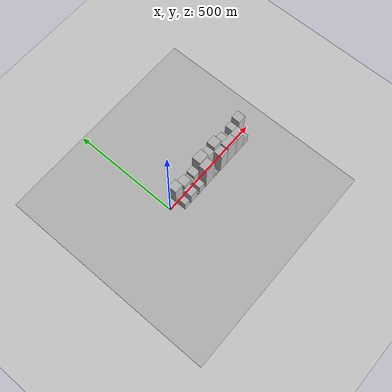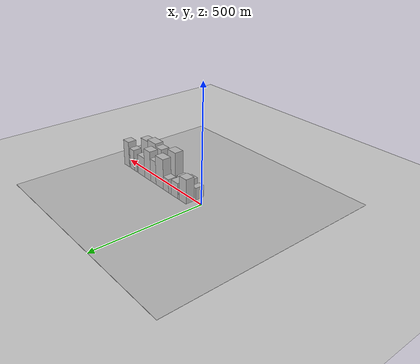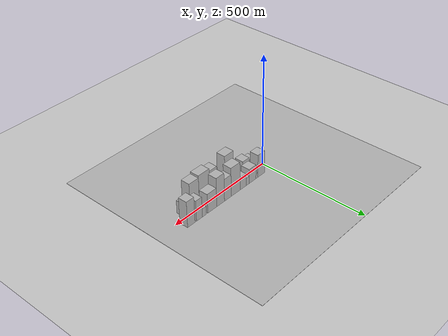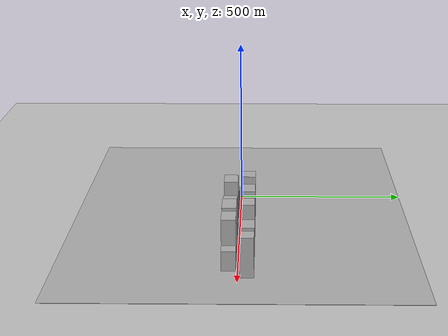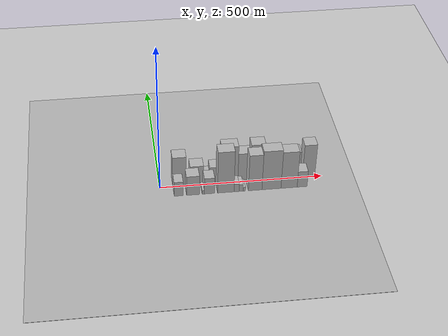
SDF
<?xml version="1.0" encoding="utf-8"?>

<sdf version="1.6">

   <world name="default">

      <gui fullscreen="0">

         <camera name="user_camera">

            <pose>-15 0 4.57585 0 0 0</pose>

            <view_controller>orbit</view_controller>

         </camera>

      </gui>

      <scene>

         <sky>

           <clouds>

             <speed>12</speed>

           </clouds>

         </sky>

         <ambient>0.4 0.4 0.4 1</ambient>

         <background>0.7 0.7 0.7 1</background>

         <shadows>1</shadows>

      </scene>

      <gravity>0 0 -9.8066</gravity>

      <magnetic_field>6e-06 2.3e-05 -4.2e-05</magnetic_field>

      <physics default="0" name="default_physics" type="ode">

         <ode>

            <solver>

               <type>quick</type>

               <iters>10</iters>

               <sor>1.0</sor>

               <use_dynamic_moi_rescaling>0</use_dynamic_moi_rescaling>

            </solver>

            <constraints>

               <cfm>0</cfm>

               <erp>0.2</erp>

               <contact_max_correcting_vel>100</contact_max_correcting_vel>

               <contact_surface_layer>0.001</contact_surface_layer>

            </constraints>

         </ode>

         <max_step_size>0.004</max_step_size>

         <real_time_factor>1</real_time_factor>

         <real_time_update_rate>250</real_time_update_rate>

      </physics>

      <light name="sun" type="directional">

         <cast_shadows>1</cast_shadows>

         <pose>0 0 10 0 0 0</pose>

         <diffuse>0.8 0.8 0.8 1</diffuse>

         <specular>0.2 0.2 0.2 1</specular>

         <attenuation>

            <range>1000</range>

            <constant>0.9</constant>

            <linear>0.01</linear>

            <quadratic>0.001</quadratic>

         </attenuation>

         <direction>-0.5 0.1 -0.9</direction>

      </light>

      <include>

         <name>ground_plane_1</name>

         <uri>model://HANNAS_ground_plane</uri>

         <pose>0 0 0  0 0 0</pose>

      </include>

      <include>

         <name>ground_plane_2</name>

         <uri>model://HANNAS_ground_plane</uri>

         <pose>100 0 0  0 0 0</pose>

      </include>

      <model name="building_1">

         <static>1</static>

         <pose frame="">61.0393 24.5000 0 0.000000 0.000000 1.570796</pose>

         <link name="link">

            <pose frame="">0 0 54.00 0 0 0</pose>

            <collision name="collision">

               <geometry>

                  <box>

                     <size>40.0000 42.0786 108.0000</size>

                  </box>

               </geometry>

               <max_contacts>10</max_contacts>

               <surface>

                  <contact>

                     <ode/>

                  </contact>

                  <bounce/>

                  <friction>

                     <torsional>

                        <ode/>

                     </torsional>

                     <ode/>

                  </friction>

               </surface>

            </collision>

            <visual name="visual">

               <cast_shadows>0</cast_shadows>

               <geometry>

                  <box>

                     <size>40.0000 42.0786 108.0000</size>

                  </box>

               </geometry>

               <material>

                  <script>

                     <uri>model://HANNAS_wall/materials/scripts</uri>

                     <uri>model://HANNAS_wall/materials/textures</uri>

                     <name>vrc/HANNAS_wall</name>

                  </script>

               </material>

            </visual>

            <self_collide>0</self_collide>

            <enable_wind>0</enable_wind>

            <kinematic>0</kinematic>

         </link>

      </model>

      <model name="building_2">

         <static>1</static>

         <pose frame="">87.7988 24.5000 0 0.000000 0.000000 1.570796</pose>

         <link name="link">

            <pose frame="">0 0 12.00 0 0 0</pose>

            <collision name="collision">

               <geometry>

                  <box>

                     <size>40.0000 11.4404 24.0000</size>

                  </box>

               </geometry>

               <max_contacts>10</max_contacts>

               <surface>

                  <contact>

                     <ode/>

                  </contact>

                  <bounce/>

                  <friction>

                     <torsional>

                        <ode/>

                     </torsional>

                     <ode/>

                  </friction>

               </surface>

            </collision>

            <visual name="visual">

               <cast_shadows>0</cast_shadows>

               <geometry>

                  <box>

                     <size>40.0000 11.4404 24.0000</size>

                  </box>

               </geometry>

               <material>

                  <script>

                     <uri>model://HANNAS_wall/materials/scripts</uri>

                     <uri>model://HANNAS_wall/materials/textures</uri>

                     <name>vrc/HANNAS_wall</name>

                  </script>

               </material>

            </visual>

            <self_collide>0</self_collide>

            <enable_wind>0</enable_wind>

            <kinematic>0</kinematic>

         </link>

      </model>

      <model name="building_3">

         <static>1</static>

         <pose frame="">114.1051 24.5000 0 0.000000 0.000000 1.570796</pose>

         <link name="link">

            <pose frame="">0 0 34.50 0 0 0</pose>

            <collision name="collision">

               <geometry>

                  <box>

                     <size>40.0000 41.1723 69.0000</size>

                  </box>

               </geometry>

               <max_contacts>10</max_contacts>

               <surface>

                  <contact>

                     <ode/>

                  </contact>

                  <bounce/>

                  <friction>

                     <torsional>

                        <ode/>

                     </torsional>

                     <ode/>

                  </friction>

               </surface>

            </collision>

            <visual name="visual">

               <cast_shadows>0</cast_shadows>

               <geometry>

                  <box>

                     <size>40.0000 41.1723 69.0000</size>

                  </box>

               </geometry>

               <material>

                  <script>

                     <uri>model://HANNAS_wall/materials/scripts</uri>

                     <uri>model://HANNAS_wall/materials/textures</uri>

                     <name>vrc/HANNAS_wall</name>

                  </script>

               </material>

            </visual>

            <self_collide>0</self_collide>

            <enable_wind>0</enable_wind>

            <kinematic>0</kinematic>

         </link>

      </model>

      <model name="building_4">

         <static>1</static>

         <pose frame="">144.1819 24.5000 0 0.000000 0.000000 1.570796</pose>

         <link name="link">

            <pose frame="">0 0 18.00 0 0 0</pose>

            <collision name="collision">

               <geometry>

                  <box>

                     <size>40.0000 18.9814 36.0000</size>

                  </box>

               </geometry>

               <max_contacts>10</max_contacts>

               <surface>

                  <contact>

                     <ode/>

                  </contact>

                  <bounce/>

                  <friction>

                     <torsional>

                        <ode/>

                     </torsional>

                     <ode/>

                  </friction>

               </surface>

            </collision>

            <visual name="visual">

               <cast_shadows>0</cast_shadows>

               <geometry>

                  <box>

                     <size>40.0000 18.9814 36.0000</size>

                  </box>

               </geometry>

               <material>

                  <script>

                     <uri>model://HANNAS_wall/materials/scripts</uri>

                     <uri>model://HANNAS_wall/materials/textures</uri>

                     <name>vrc/HANNAS_wall</name>

                  </script>

               </material>

            </visual>

            <self_collide>0</self_collide>

            <enable_wind>0</enable_wind>

            <kinematic>0</kinematic>

         </link>

      </model>

      <model name="building_5">

         <static>1</static>

         <pose frame="">171.2053 24.5000 0 0.000000 0.000000 1.570796</pose>

         <link name="link">

            <pose frame="">0 0 30.00 0 0 0</pose>

            <collision name="collision">

               <geometry>

                  <box>

                     <size>40.0000 35.0654 60.0000</size>

                  </box>

               </geometry>

               <max_contacts>10</max_contacts>

               <surface>

                  <contact>

                     <ode/>

                  </contact>

                  <bounce/>

                  <friction>

                     <torsional>

                        <ode/>

                     </torsional>

                     <ode/>

                  </friction>

               </surface>

            </collision>

            <visual name="visual">

               <cast_shadows>0</cast_shadows>

               <geometry>

                  <box>

                     <size>40.0000 35.0654 60.0000</size>

                  </box>

               </geometry>

               <material>

                  <script>

                     <uri>model://HANNAS_wall/materials/scripts</uri>

                     <uri>model://HANNAS_wall/materials/textures</uri>

                     <name>vrc/HANNAS_wall</name>

                  </script>

               </material>

            </visual>

            <self_collide>0</self_collide>

            <enable_wind>0</enable_wind>

            <kinematic>0</kinematic>

         </link>

      </model>

      <model name="building_6">

         <static>1</static>

         <pose frame="">214.6313 24.5000 0 0.000000 0.000000 1.570796</pose>

         <link name="link">

            <pose frame="">0 0 67.50 0 0 0</pose>

            <collision name="collision">

               <geometry>

                  <box>

                     <size>40.0000 51.7867 135.0000</size>

                  </box>

               </geometry>

               <max_contacts>10</max_contacts>

               <surface>

                  <contact>

                     <ode/>

                  </contact>

                  <bounce/>

                  <friction>

                     <torsional>

                        <ode/>

                     </torsional>

                     <ode/>

                  </friction>

               </surface>

            </collision>

            <visual name="visual">

               <cast_shadows>0</cast_shadows>

               <geometry>

                  <box>

                     <size>40.0000 51.7867 135.0000</size>

                  </box>

               </geometry>

               <material>

                  <script>

                     <uri>model://HANNAS_wall/materials/scripts</uri>

                     <uri>model://HANNAS_wall/materials/textures</uri>

                     <name>vrc/HANNAS_wall</name>

                  </script>

               </material>

            </visual>

            <self_collide>0</self_collide>

            <enable_wind>0</enable_wind>

            <kinematic>0</kinematic>

         </link>

      </model>

      <model name="building_7">

         <static>1</static>

         <pose frame="">259.8785 24.5000 0 0.000000 0.000000 1.570796</pose>

         <link name="link">

            <pose frame="">0 0 52.50 0 0 0</pose>

            <collision name="collision">

               <geometry>

                  <box>

                     <size>40.0000 38.7076 105.0000</size>

                  </box>

               </geometry>

               <max_contacts>10</max_contacts>

               <surface>

                  <contact>

                     <ode/>

                  </contact>

                  <bounce/>

                  <friction>

                     <torsional>

                        <ode/>

                     </torsional>

                     <ode/>

                  </friction>

               </surface>

            </collision>

            <visual name="visual">

               <cast_shadows>0</cast_shadows>

               <geometry>

                  <box>

                     <size>40.0000 38.7076 105.0000</size>

                  </box>

               </geometry>

               <material>

                  <script>

                     <uri>model://HANNAS_wall/materials/scripts</uri>

                     <uri>model://HANNAS_wall/materials/textures</uri>

                     <name>vrc/HANNAS_wall</name>

                  </script>

               </material>

            </visual>

            <self_collide>0</self_collide>

            <enable_wind>0</enable_wind>

            <kinematic>0</kinematic>

         </link>

      </model>

      <model name="building_8">

         <static>1</static>

         <pose frame="">300.9678 24.5000 0 0.000000 0.000000 1.570796</pose>

         <link name="link">

            <pose frame="">0 0 67.50 0 0 0</pose>

            <collision name="collision">

               <geometry>

                  <box>

                     <size>40.0000 43.4711 135.0000</size>

                  </box>

               </geometry>

               <max_contacts>10</max_contacts>

               <surface>

                  <contact>

                     <ode/>

                  </contact>

                  <bounce/>

                  <friction>

                     <torsional>

                        <ode/>

                     </torsional>

                     <ode/>

                  </friction>

               </surface>

            </collision>

            <visual name="visual">

               <cast_shadows>0</cast_shadows>

               <geometry>

                  <box>

                     <size>40.0000 43.4711 135.0000</size>

                  </box>

               </geometry>

               <material>

                  <script>

                     <uri>model://HANNAS_wall/materials/scripts</uri>

                     <uri>model://HANNAS_wall/materials/textures</uri>

                     <name>vrc/HANNAS_wall</name>

                  </script>

               </material>

            </visual>

            <self_collide>0</self_collide>

            <enable_wind>0</enable_wind>

            <kinematic>0</kinematic>

         </link>

      </model>

      <model name="building_9">

         <static>1</static>

         <pose frame="">347.8488 24.5000 0 0.000000 0.000000 1.570796</pose>

         <link name="link">

            <pose frame="">0 0 45.00 0 0 0</pose>

            <collision name="collision">

               <geometry>

                  <box>

                     <size>40.0000 50.2910 90.0000</size>

                  </box>

               </geometry>

               <max_contacts>10</max_contacts>

               <surface>

                  <contact>

                     <ode/>

                  </contact>

                  <bounce/>

                  <friction>

                     <torsional>

                        <ode/>

                     </torsional>

                     <ode/>

                  </friction>

               </surface>

            </collision>

            <visual name="visual">

               <cast_shadows>0</cast_shadows>

               <geometry>

                  <box>

                     <size>40.0000 50.2910 90.0000</size>

                  </box>

               </geometry>

               <material>

                  <script>

                     <uri>model://HANNAS_wall/materials/scripts</uri>

                     <uri>model://HANNAS_wall/materials/textures</uri>

                     <name>vrc/HANNAS_wall</name>

                  </script>

               </material>

            </visual>

            <self_collide>0</self_collide>

            <enable_wind>0</enable_wind>

            <kinematic>0</kinematic>

         </link>

      </model>

      <model name="building_10">

         <static>1</static>

         <pose frame="">391.0705 24.5000 0 0.000000 0.000000 1.570796</pose>

         <link name="link">

            <pose frame="">0 0 19.50 0 0 0</pose>

            <collision name="collision">

               <geometry>

                  <box>

                     <size>40.0000 22.1524 39.0000</size>

                  </box>

               </geometry>

               <max_contacts>10</max_contacts>

               <surface>

                  <contact>

                     <ode/>

                  </contact>

                  <bounce/>

                  <friction>

                     <torsional>

                        <ode/>

                     </torsional>

                     <ode/>

                  </friction>

               </surface>

            </collision>

            <visual name="visual">

               <cast_shadows>0</cast_shadows>

               <geometry>

                  <box>

                     <size>40.0000 22.1524 39.0000</size>

                  </box>

               </geometry>

               <material>

                  <script>

                     <uri>model://HANNAS_wall/materials/scripts</uri>

                     <uri>model://HANNAS_wall/materials/textures</uri>

                     <name>vrc/HANNAS_wall</name>

                  </script>

               </material>

            </visual>

            <self_collide>0</self_collide>

            <enable_wind>0</enable_wind>

            <kinematic>0</kinematic>

         </link>

      </model>

      <model name="building_11">

         <static>1</static>

         <pose frame="">417.8447 24.5000 0 0.000000 0.000000 1.570796</pose>

         <link name="link">

            <pose frame="">0 0 48.00 0 0 0</pose>

            <collision name="collision">

               <geometry>

                  <box>

                     <size>40.0000 31.3960 96.0000</size>

                  </box>

               </geometry>

               <max_contacts>10</max_contacts>

               <surface>

                  <contact>

                     <ode/>

                  </contact>

                  <bounce/>

                  <friction>

                     <torsional>

                        <ode/>

                     </torsional>

                     <ode/>

                  </friction>

               </surface>

            </collision>

            <visual name="visual">

               <cast_shadows>0</cast_shadows>

               <geometry>

                  <box>

                     <size>40.0000 31.3960 96.0000</size>

                  </box>

               </geometry>

               <material>

                  <script>

                     <uri>model://HANNAS_wall/materials/scripts</uri>

                     <uri>model://HANNAS_wall/materials/textures</uri>

                     <name>vrc/HANNAS_wall</name>

                  </script>

               </material>

            </visual>

            <self_collide>0</self_collide>

            <enable_wind>0</enable_wind>

            <kinematic>0</kinematic>

         </link>

      </model>

      <model name="building_12">

         <static>1</static>

         <pose frame="">461.0746 24.5000 0 0.000000 0.000000 1.570796</pose>

         <link name="link">

            <pose frame="">0 0 60.00 0 0 0</pose>

            <collision name="collision">

               <geometry>

                  <box>

                     <size>40.0000 39.0637 120.0000</size>

                  </box>

               </geometry>

               <max_contacts>10</max_contacts>

               <surface>

                  <contact>

                     <ode/>

                  </contact>

                  <bounce/>

                  <friction>

                     <torsional>

                        <ode/>

                     </torsional>

                     <ode/>

                  </friction>

               </surface>

            </collision>

            <visual name="visual">

               <cast_shadows>0</cast_shadows>

               <geometry>

                  <box>

                     <size>40.0000 39.0637 120.0000</size>

                  </box>

               </geometry>

               <material>

                  <script>

                     <uri>model://HANNAS_wall/materials/scripts</uri>

                     <uri>model://HANNAS_wall/materials/textures</uri>

                     <name>vrc/HANNAS_wall</name>

                  </script>

               </material>

            </visual>

            <self_collide>0</self_collide>

            <enable_wind>0</enable_wind>

            <kinematic>0</kinematic>

         </link>

      </model>

      <model name="building_13">

         <static>1</static>

         <pose frame="">53.6402 -24.5000 0 0.000000 0.000000 1.570796</pose>

         <link name="link">

            <pose frame="">0 0 27.00 0 0 0</pose>

            <collision name="collision">

               <geometry>

                  <box>

                     <size>40.0000 27.2803 54.0000</size>

                  </box>

               </geometry>

               <max_contacts>10</max_contacts>

               <surface>

                  <contact>

                     <ode/>

                  </contact>

                  <bounce/>

                  <friction>

                     <torsional>

                        <ode/>

                     </torsional>

                     <ode/>

                  </friction>

               </surface>

            </collision>

            <visual name="visual">

               <cast_shadows>0</cast_shadows>

               <geometry>

                  <box>

                     <size>40.0000 27.2803 54.0000</size>

                  </box>

               </geometry>

               <material>

                  <script>

                     <uri>model://HANNAS_wall/materials/scripts</uri>

                     <uri>model://HANNAS_wall/materials/textures</uri>

                     <name>vrc/HANNAS_wall</name>

                  </script>

               </material>

            </visual>

            <self_collide>0</self_collide>

            <enable_wind>0</enable_wind>

            <kinematic>0</kinematic>

         </link>

      </model>

      <model name="building_14">

         <static>1</static>

         <pose frame="">96.8965 -24.5000 0 0.000000 0.000000 1.570796</pose>

         <link name="link">

            <pose frame="">0 0 36.00 0 0 0</pose>

            <collision name="collision">

               <geometry>

                  <box>

                     <size>40.0000 39.2323 72.0000</size>

                  </box>

               </geometry>

               <max_contacts>10</max_contacts>

               <surface>

                  <contact>

                     <ode/>

                  </contact>

                  <bounce/>

                  <friction>

                     <torsional>

                        <ode/>

                     </torsional>

                     <ode/>

                  </friction>

               </surface>

            </collision>

            <visual name="visual">

               <cast_shadows>0</cast_shadows>

               <geometry>

                  <box>

                     <size>40.0000 39.2323 72.0000</size>

                  </box>

               </geometry>

               <material>

                  <script>

                     <uri>model://HANNAS_wall/materials/scripts</uri>

                     <uri>model://HANNAS_wall/materials/textures</uri>

                     <name>vrc/HANNAS_wall</name>

                  </script>

               </material>

            </visual>

            <self_collide>0</self_collide>

            <enable_wind>0</enable_wind>

            <kinematic>0</kinematic>

         </link>

      </model>

      <model name="building_15">

         <static>1</static>

         <pose frame="">127.9105 -24.5000 0 0.000000 0.000000 1.570796</pose>

         <link name="link">

            <pose frame="">0 0 7.50 0 0 0</pose>

            <collision name="collision">

               <geometry>

                  <box>

                     <size>40.0000 6.7958 15.0000</size>

                  </box>

               </geometry>

               <max_contacts>10</max_contacts>

               <surface>

                  <contact>

                     <ode/>

                  </contact>

                  <bounce/>

                  <friction>

                     <torsional>

                        <ode/>

                     </torsional>

                     <ode/>

                  </friction>

               </surface>

            </collision>

            <visual name="visual">

               <cast_shadows>0</cast_shadows>

               <geometry>

                  <box>

                     <size>40.0000 6.7958 15.0000</size>

                  </box>

               </geometry>

               <material>

                  <script>

                     <uri>model://HANNAS_wall/materials/scripts</uri>

                     <uri>model://HANNAS_wall/materials/textures</uri>

                     <name>vrc/HANNAS_wall</name>

                  </script>

               </material>

            </visual>

            <self_collide>0</self_collide>

            <enable_wind>0</enable_wind>

            <kinematic>0</kinematic>

         </link>

      </model>

      <model name="building_16">

         <static>1</static>

         <pose frame="">146.7955 -24.5000 0 0.000000 0.000000 1.570796</pose>

         <link name="link">

            <pose frame="">0 0 30.00 0 0 0</pose>

            <collision name="collision">

               <geometry>

                  <box>

                     <size>40.0000 30.9742 60.0000</size>

                  </box>

               </geometry>

               <max_contacts>10</max_contacts>

               <surface>

                  <contact>

                     <ode/>

                  </contact>

                  <bounce/>

                  <friction>

                     <torsional>

                        <ode/>

                     </torsional>

                     <ode/>

                  </friction>

               </surface>

            </collision>

            <visual name="visual">

               <cast_shadows>0</cast_shadows>

               <geometry>

                  <box>

                     <size>40.0000 30.9742 60.0000</size>

                  </box>

               </geometry>

               <material>

                  <script>

                     <uri>model://HANNAS_wall/materials/scripts</uri>

                     <uri>model://HANNAS_wall/materials/textures</uri>

                     <name>vrc/HANNAS_wall</name>

                  </script>

               </material>

            </visual>

            <self_collide>0</self_collide>

            <enable_wind>0</enable_wind>

            <kinematic>0</kinematic>

         </link>

      </model>

      <model name="building_17">

         <static>1</static>

         <pose frame="">196.4315 -24.5000 0 0.000000 0.000000 1.570796</pose>

         <link name="link">

            <pose frame="">0 0 78.00 0 0 0</pose>

            <collision name="collision">

               <geometry>

                  <box>

                     <size>40.0000 50.2978 156.0000</size>

                  </box>

               </geometry>

               <max_contacts>10</max_contacts>

               <surface>

                  <contact>

                     <ode/>

                  </contact>

                  <bounce/>

                  <friction>

                     <torsional>

                        <ode/>

                     </torsional>

                     <ode/>

                  </friction>

               </surface>

            </collision>

            <visual name="visual">

               <cast_shadows>0</cast_shadows>

               <geometry>

                  <box>

                     <size>40.0000 50.2978 156.0000</size>

                  </box>

               </geometry>

               <material>

                  <script>

                     <uri>model://HANNAS_wall/materials/scripts</uri>

                     <uri>model://HANNAS_wall/materials/textures</uri>

                     <name>vrc/HANNAS_wall</name>

                  </script>

               </material>

            </visual>

            <self_collide>0</self_collide>

            <enable_wind>0</enable_wind>

            <kinematic>0</kinematic>

         </link>

      </model>

      <model name="building_18">

         <static>1</static>

         <pose frame="">229.3445 -24.5000 0 0.000000 0.000000 1.570796</pose>

         <link name="link">

            <pose frame="">0 0 15.00 0 0 0</pose>

            <collision name="collision">

               <geometry>

                  <box>

                     <size>40.0000 15.5283 30.0000</size>

                  </box>

               </geometry>

               <max_contacts>10</max_contacts>

               <surface>

                  <contact>

                     <ode/>

                  </contact>

                  <bounce/>

                  <friction>

                     <torsional>

                        <ode/>

                     </torsional>

                     <ode/>

                  </friction>

               </surface>

            </collision>

            <visual name="visual">

               <cast_shadows>0</cast_shadows>

               <geometry>

                  <box>

                     <size>40.0000 15.5283 30.0000</size>

                  </box>

               </geometry>

               <material>

                  <script>

                     <uri>model://HANNAS_wall/materials/scripts</uri>

                     <uri>model://HANNAS_wall/materials/textures</uri>

                     <name>vrc/HANNAS_wall</name>

                  </script>

               </material>

            </visual>

            <self_collide>0</self_collide>

            <enable_wind>0</enable_wind>

            <kinematic>0</kinematic>

         </link>

      </model>

      <model name="building_19">

         <static>1</static>

         <pose frame="">243.2892 -24.5000 0 0.000000 0.000000 1.570796</pose>

         <link name="link">

            <pose frame="">0 0 13.50 0 0 0</pose>

            <collision name="collision">

               <geometry>

                  <box>

                     <size>40.0000 12.3609 27.0000</size>

                  </box>

               </geometry>

               <max_contacts>10</max_contacts>

               <surface>

                  <contact>

                     <ode/>

                  </contact>

                  <bounce/>

                  <friction>

                     <torsional>

                        <ode/>

                     </torsional>

                     <ode/>

                  </friction>

               </surface>

            </collision>

            <visual name="visual">

               <cast_shadows>0</cast_shadows>

               <geometry>

                  <box>

                     <size>40.0000 12.3609 27.0000</size>

                  </box>

               </geometry>

               <material>

                  <script>

                     <uri>model://HANNAS_wall/materials/scripts</uri>

                     <uri>model://HANNAS_wall/materials/textures</uri>

                     <name>vrc/HANNAS_wall</name>

                  </script>

               </material>

            </visual>

            <self_collide>0</self_collide>

            <enable_wind>0</enable_wind>

            <kinematic>0</kinematic>

         </link>

      </model>

      <model name="building_20">

         <static>1</static>

         <pose frame="">252.9494 -24.5000 0 0.000000 0.000000 1.570796</pose>

         <link name="link">

            <pose frame="">0 0 7.50 0 0 0</pose>

            <collision name="collision">

               <geometry>

                  <box>

                     <size>40.0000 6.9595 15.0000</size>

                  </box>

               </geometry>

               <max_contacts>10</max_contacts>

               <surface>

                  <contact>

                     <ode/>

                  </contact>

                  <bounce/>

                  <friction>

                     <torsional>

                        <ode/>

                     </torsional>

                     <ode/>

                  </friction>

               </surface>

            </collision>

            <visual name="visual">

               <cast_shadows>0</cast_shadows>

               <geometry>

                  <box>

                     <size>40.0000 6.9595 15.0000</size>

                  </box>

               </geometry>

               <material>

                  <script>

                     <uri>model://HANNAS_wall/materials/scripts</uri>

                     <uri>model://HANNAS_wall/materials/textures</uri>

                     <name>vrc/HANNAS_wall</name>

                  </script>

               </material>

            </visual>

            <self_collide>0</self_collide>

            <enable_wind>0</enable_wind>

            <kinematic>0</kinematic>

         </link>

      </model>

      <model name="building_21">

         <static>1</static>

         <pose frame="">286.2668 -24.5000 0 0.000000 0.000000 1.570796</pose>

         <link name="link">

            <pose frame="">0 0 67.50 0 0 0</pose>

            <collision name="collision">

               <geometry>

                  <box>

                     <size>40.0000 41.6752 135.0000</size>

                  </box>

               </geometry>

               <max_contacts>10</max_contacts>

               <surface>

                  <contact>

                     <ode/>

                  </contact>

                  <bounce/>

                  <friction>

                     <torsional>

                        <ode/>

                     </torsional>

                     <ode/>

                  </friction>

               </surface>

            </collision>

            <visual name="visual">

               <cast_shadows>0</cast_shadows>

               <geometry>

                  <box>

                     <size>40.0000 41.6752 135.0000</size>

                  </box>

               </geometry>

               <material>

                  <script>

                     <uri>model://HANNAS_wall/materials/scripts</uri>

                     <uri>model://HANNAS_wall/materials/textures</uri>

                     <name>vrc/HANNAS_wall</name>

                  </script>

               </material>

            </visual>

            <self_collide>0</self_collide>

            <enable_wind>0</enable_wind>

            <kinematic>0</kinematic>

         </link>

      </model>

      <model name="building_22">

         <static>1</static>

         <pose frame="">336.2884 -24.5000 0 0.000000 0.000000 1.570796</pose>

         <link name="link">

            <pose frame="">0 0 73.50 0 0 0</pose>

            <collision name="collision">

               <geometry>

                  <box>

                     <size>40.0000 58.3681 147.0000</size>

                  </box>

               </geometry>

               <max_contacts>10</max_contacts>

               <surface>

                  <contact>

                     <ode/>

                  </contact>

                  <bounce/>

                  <friction>

                     <torsional>

                        <ode/>

                     </torsional>

                     <ode/>

                  </friction>

               </surface>

            </collision>

            <visual name="visual">

               <cast_shadows>0</cast_shadows>

               <geometry>

                  <box>

                     <size>40.0000 58.3681 147.0000</size>

                  </box>

               </geometry>

               <material>

                  <script>

                     <uri>model://HANNAS_wall/materials/scripts</uri>

                     <uri>model://HANNAS_wall/materials/textures</uri>

                     <name>vrc/HANNAS_wall</name>

                  </script>

               </material>

            </visual>

            <self_collide>0</self_collide>

            <enable_wind>0</enable_wind>

            <kinematic>0</kinematic>

         </link>

      </model>

      <model name="building_23">

         <static>1</static>

         <pose frame="">390.3458 -24.5000 0 0.000000 0.000000 1.570796</pose>

         <link name="link">

            <pose frame="">0 0 69.00 0 0 0</pose>

            <collision name="collision">

               <geometry>

                  <box>

                     <size>40.0000 49.7467 138.0000</size>

                  </box>

               </geometry>

               <max_contacts>10</max_contacts>

               <surface>

                  <contact>

                     <ode/>

                  </contact>

                  <bounce/>

                  <friction>

                     <torsional>

                        <ode/>

                     </torsional>

                     <ode/>

                  </friction>

               </surface>

            </collision>

            <visual name="visual">

               <cast_shadows>0</cast_shadows>

               <geometry>

                  <box>

                     <size>40.0000 49.7467 138.0000</size>

                  </box>

               </geometry>

               <material>

                  <script>

                     <uri>model://HANNAS_wall/materials/scripts</uri>

                     <uri>model://HANNAS_wall/materials/textures</uri>

                     <name>vrc/HANNAS_wall</name>

                  </script>

               </material>

            </visual>

            <self_collide>0</self_collide>

            <enable_wind>0</enable_wind>

            <kinematic>0</kinematic>

         </link>

      </model>

      <model name="building_24">

         <static>1</static>

         <pose frame="">430.6834 -24.5000 0 0.000000 0.000000 1.570796</pose>

         <link name="link">

            <pose frame="">0 0 30.00 0 0 0</pose>

            <collision name="collision">

               <geometry>

                  <box>

                     <size>40.0000 30.9284 60.0000</size>

                  </box>

               </geometry>

               <max_contacts>10</max_contacts>

               <surface>

                  <contact>

                     <ode/>

                  </contact>

                  <bounce/>

                  <friction>

                     <torsional>

                        <ode/>

                     </torsional>

                     <ode/>

                  </friction>

               </surface>

            </collision>

            <visual name="visual">

               <cast_shadows>0</cast_shadows>

               <geometry>

                  <box>

                     <size>40.0000 30.9284 60.0000</size>

                  </box>

               </geometry>

               <material>

                  <script>

                     <uri>model://HANNAS_wall/materials/scripts</uri>

                     <uri>model://HANNAS_wall/materials/textures</uri>

                     <name>vrc/HANNAS_wall</name>

                  </script>

               </material>

            </visual>

            <self_collide>0</self_collide>

            <enable_wind>0</enable_wind>

            <kinematic>0</kinematic>

         </link>

      </model>

   </world>

</sdf>

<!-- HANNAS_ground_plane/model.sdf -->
<sdf version="1.4">
<model name="HANNAS_ground_plane">
  <static>true</static>
    <link name="link">
      <collision name="collision">
        <geometry>
          <plane>
            <normal>0 0 1</normal>
            <size>1000 1000</size>
          </plane>
        </geometry>
        <surface>
          <friction>
            <ode>
              <mu>100</mu>
              <mu2>50</mu2>
            </ode>
          </friction>
        </surface>
      </collision>
      <visual name="visual">
        <cast_shadows>false</cast_shadows>
        <geometry>
          <plane>
            <normal>0 0 1</normal>
            <size>1000 1000</size>
          </plane>
        </geometry>
        <material>
          <script>
            <uri>model://HANNAS_ground_plane/materials/scripts/HANNAS_ground_plane.material</uri>
	    <uri>model://HANNAS_ground_plane/materials/textures</uri>
            <name>HANNASGroundPlane/Image</name>
          </script>
        </material>
      </visual>
    </link>
  </model>
</sdf>
